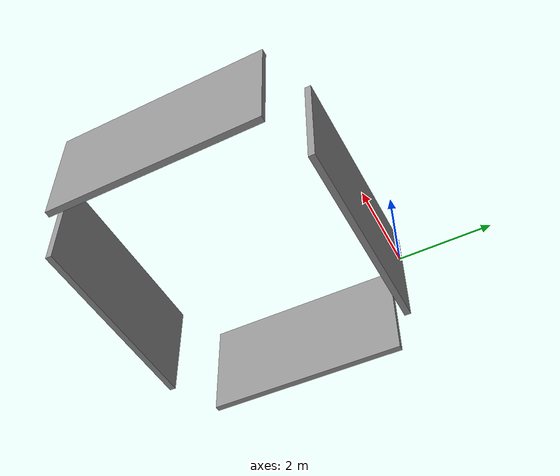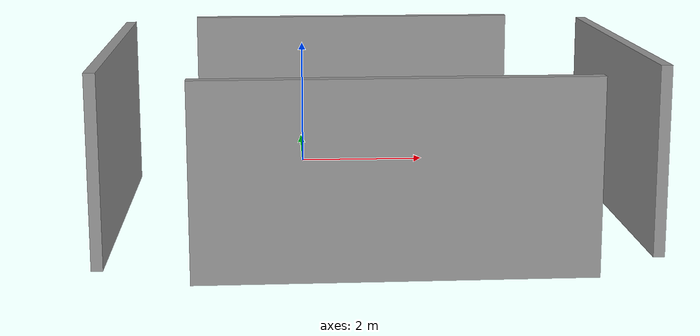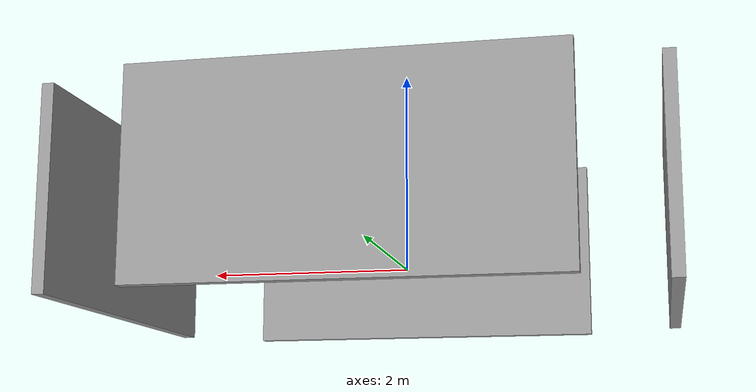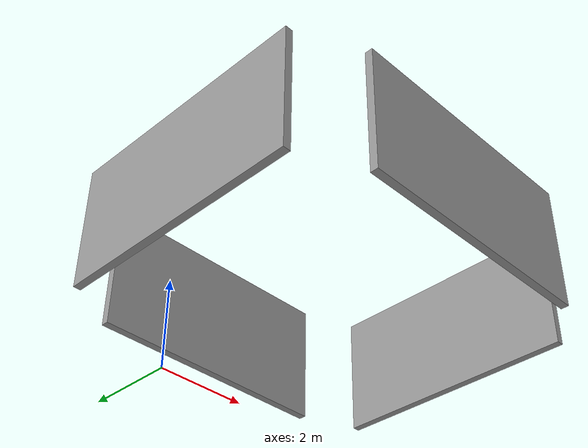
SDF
<?xml version='1.0'?>
<sdf version='1.7'>
  <model name='mm.world'>
    <pose>0.897019 -3.35098 0 0 -0 0</pose>
    <link name='Wall_0'>
      <collision name='Wall_0_Collision'>
        <geometry>
          <box>
            <size>5 0.15 2.5</size>
          </box>
        </geometry>
        <pose>0 0 1.25 0 -0 0</pose>
      </collision>
      <visual name='Wall_0_Visual'>
        <pose>0 0 1.25 0 -0 0</pose>
        <geometry>
          <box>
            <size>5 0.15 2.5</size>
          </box>
        </geometry>
        <material>
          <script>
            <uri>file://media/materials/scripts/gazebo.material</uri>
            <name>Gazebo/Grey</name>
          </script>
          <ambient>1 1 1 1</ambient>
        </material>
        <meta>
          <layer>0</layer>
        </meta>
      </visual>
      <pose>-3.57352 -0.199019 0 0 -0 -1.5708</pose>
    </link>
    <link name='Wall_2'>
      <collision name='Wall_2_Collision'>
        <geometry>
          <box>
            <size>5 0.15 2.5</size>
          </box>
        </geometry>
        <pose>0 0 1.25 0 -0 0</pose>
      </collision>
      <visual name='Wall_2_Visual'>
        <pose>0 0 1.25 0 -0 0</pose>
        <geometry>
          <box>
            <size>5 0.15 2.5</size>
          </box>
        </geometry>
        <material>
          <script>
            <uri>file://media/materials/scripts/gazebo.material</uri>
            <name>Gazebo/Grey</name>
          </script>
          <ambient>1 1 1 1</ambient>
        </material>
        <meta>
          <layer>0</layer>
        </meta>
      </visual>
      <pose>0.121858 -3.27598 0 0 -0 0</pose>
    </link>
    <link name='Wall_4'>
      <collision name='Wall_4_Collision'>
        <geometry>
          <box>
            <size>5 0.15 2.5</size>
          </box>
        </geometry>
        <pose>0 0 1.25 0 -0 0</pose>
      </collision>
      <visual name='Wall_4_Visual'>
        <pose>0 0 1.25 0 -0 0</pose>
        <geometry>
          <box>
            <size>5 0.15 2.5</size>
          </box>
        </geometry>
        <material>
          <script>
            <uri>file://media/materials/scripts/gazebo.material</uri>
            <name>Gazebo/Grey</name>
          </script>
          <ambient>1 1 1 1</ambient>
        </material>
        <meta>
          <layer>0</layer>
        </meta>
      </visual>
      <pose>-0.088023 2.86303 0 0 -0 0</pose>
    </link>
    <link name='Wall_7'>
      <collision name='Wall_7_Collision'>
        <geometry>
          <box>
            <size>5 0.15 2.5</size>
          </box>
        </geometry>
        <pose>0 0 1.25 0 -0 0</pose>
      </collision>
      <visual name='Wall_7_Visual'>
        <pose>0 0 1.25 0 -0 0</pose>
        <geometry>
          <box>
            <size>5 0.15 2.5</size>
          </box>
        </geometry>
        <material>
          <script>
            <uri>file://media/materials/scripts/gazebo.material</uri>
            <name>Gazebo/Grey</name>
          </script>
          <ambient>1 1 1 1</ambient>
        </material>
        <meta>
          <layer>0</layer>
        </meta>
      </visual>
      <pose>3.57352 -0.06918 0 0 -0 -1.5708</pose>
    </link>
    <static>1</static>
  </model>
</sdf>
